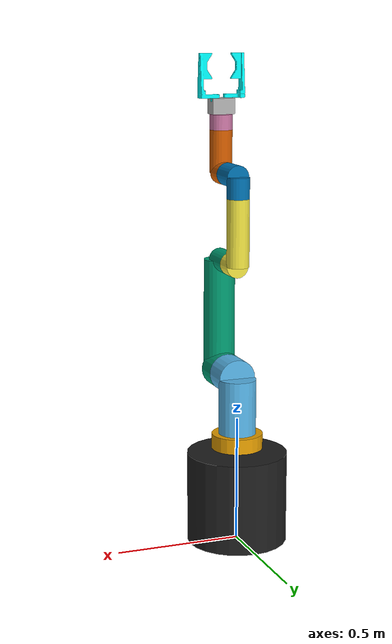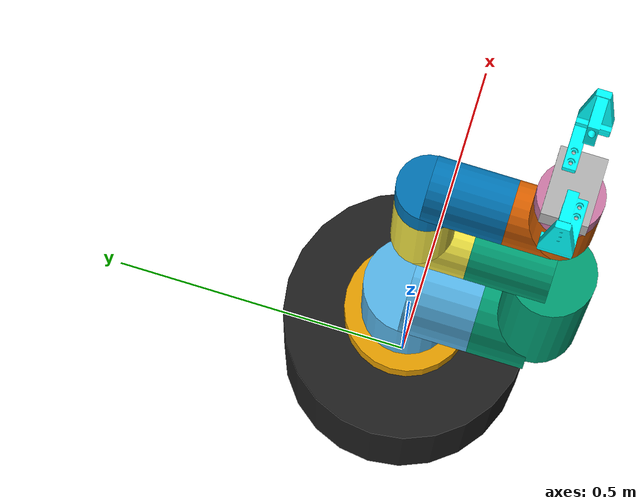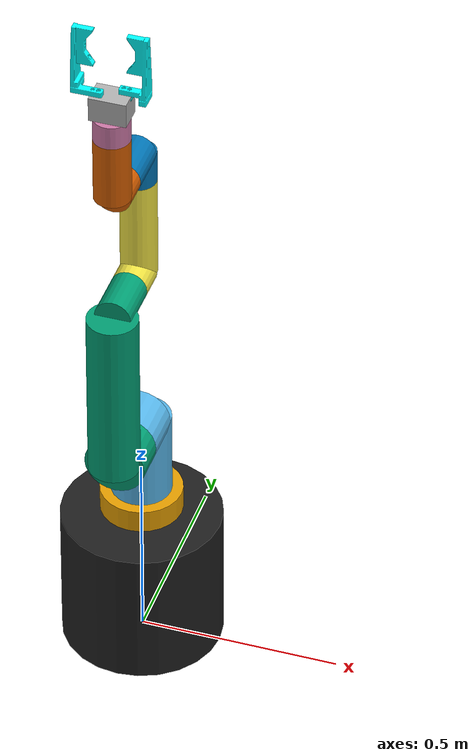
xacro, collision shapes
<?xml version="1.0" ?>
<robot name="mrm" xmlns:xacro="http://www.ros.org/wiki/xacro">

<!-- robot urdf file -->
<xacro:include filename="$(find mrm_description)/urdf/model.xacro"/>

<!-- gripper urdf file -->
<xacro:include filename="$(find mrm_description)/urdf/gripper.xacro"/>

<!-- robot stand urdf file -->
<xacro:include filename="$(find mrm_description)/urdf/stand.xacro"/>

<!-- fixed joint between robot and stand -->
    <joint name="mrm_stand" type="fixed">
      <origin rpy="0 0 0" xyz="0 0 0.23" />
      <parent link="stand" />
      <child link="base_link" />
    </joint>

<!-- fixed joint between robot and gripper -->
    <joint name="link6_gripper" type="fixed">
      <origin rpy="0 0 0" xyz="0 0 0.235" />
      <parent link="link6" />
      <child link="gripper_base" />
    </joint>

<!-- transmission and gazebo -->
    <transmission name="tran1">
        <type>transmission_interface/SimpleTransmission</type>
        <joint name="base_link__link_01">
            <hardwareInterface>PositionJointInterface</hardwareInterface>
        </joint>
        <actuator name="motor1">
            <hardwareInterface>PositionJointInterface</hardwareInterface>
            <mechanicalReduction>1</mechanicalReduction>
        </actuator>
    </transmission>

    <transmission name="tran2">
        <type>transmission_interface/SimpleTransmission</type>
        <joint name="link1_link2">
            <hardwareInterface>PositionJointInterface</hardwareInterface>
        </joint>
        <actuator name="motor2">
            <hardwareInterface>PositionJointInterface</hardwareInterface>
            <mechanicalReduction>1</mechanicalReduction>
        </actuator>
    </transmission>

    <transmission name="tran3">
        <type>transmission_interface/SimpleTransmission</type>
        <joint name="link2_link3">
            <hardwareInterface>PositionJointInterface</hardwareInterface>
        </joint>
        <actuator name="motor3">
            <hardwareInterface>PositionJointInterface</hardwareInterface>
            <mechanicalReduction>1</mechanicalReduction>
        </actuator>
    </transmission>

    <transmission name="tran4">
        <type>transmission_interface/SimpleTransmission</type>
        <joint name="link3_link4">
            <hardwareInterface>PositionJointInterface</hardwareInterface>
        </joint>
        <actuator name="motor4">
            <hardwareInterface>PositionJointInterface</hardwareInterface>
            <mechanicalReduction>1</mechanicalReduction>
        </actuator>
    </transmission>

    <transmission name="tran5">
        <type>transmission_interface/SimpleTransmission</type>
        <joint name="link4_link5">
            <hardwareInterface>PositionJointInterface</hardwareInterface>
        </joint>
        <actuator name="motor5">
            <hardwareInterface>PositionJointInterface</hardwareInterface>
            <mechanicalReduction>1</mechanicalReduction>
        </actuator>
    </transmission>

    <transmission name="tran6">
        <type>transmission_interface/SimpleTransmission</type>
        <joint name="link5_link6">
            <hardwareInterface>PositionJointInterface</hardwareInterface>
        </joint>
        <actuator name="motor6">
            <hardwareInterface>PositionJointInterface</hardwareInterface>
            <mechanicalReduction>1</mechanicalReduction>
        </actuator>
    </transmission>

    <transmission name="tran7_1">
        <type>transmission_interface/SimpleTransmission</type>
        <joint name="gripper_left">
            <hardwareInterface>PositionJointInterface</hardwareInterface>
        </joint>
        <actuator name="motor7">
            <hardwareInterface>PositionJointInterface</hardwareInterface>
            <mechanicalReduction>1</mechanicalReduction>
        </actuator>
    </transmission>

    <transmission name="tran7_2">
        <type>transmission_interface/SimpleTransmission</type>
        <joint name="gripper_right">
            <hardwareInterface>PositionJointInterface</hardwareInterface>
        </joint>
        <actuator name="motor8">
            <hardwareInterface>PositionJointInterface</hardwareInterface>
            <mechanicalReduction>1</mechanicalReduction>
        </actuator>
    </transmission>

    <gazebo>
        <plugin name="gazebo_ros_control" filename="libgazebo_ros_control.so">
        </plugin>
    </gazebo>

    <gazebo>
        <plugin name="joint_state_publisher"
                filename="libgazebo_ros_joint_state_publisher.so">
            <jointName>base_link__link_01, link1_link2, link2_link3, link3_link4, link4_link5, link5_link6, gripper_left, gripper_right</jointName>
        </plugin>
    </gazebo>

    <gazebo>
        <plugin name="gazebo_grasp_fix" filename="libgazebo_grasp_fix.so">
            <arm>
                <arm_name>arm</arm_name>
                <gripper_link>left_finger</gripper_link>
                <gripper_link>right_finger</gripper_link>
                <palm_link>left_finger</palm_link>
            </arm>
            <forces_angle_tolerance>100</forces_angle_tolerance>
            <update_rate>3</update_rate>
            <grip_count_threshold>2</grip_count_threshold>
            <max_grip_count>8</max_grip_count>
            <release_tolerance>0.01</release_tolerance>
            <disable_collision_on_attach>true</disable_collision_on_attach>
            <contact_topic>__default_topic__</contact_topic>
        </plugin>
    </gazebo>
<!--palm link should be a group in end-effector-->

<!--
NEED COLLISION AND INERTIAL PROGAMMING.***
MOVE BASE UP
CHANGE COLOR
-->
</robot>

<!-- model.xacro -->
<robot xmlns:xacro="http://www.ros.org/wiki/xacro">

	<xacro:property name="PI" value="3.1415926535897931"/>

<!-- ROBOT LINKS -->
    <link name="base_link">
		<visual>
			<origin xyz="0 0 0" rpy="0 0 0"/>
			<geometry>
				<mesh filename="package://indy7_description/meshes/stl/Indy7_0.stl"/>
			</geometry>
		</visual>
		<collision>
			<origin xyz="0 0 0" rpy="0 0 0"/>
			<geometry>
				<cylinder length="0.06" radius="0.102"/>
			</geometry>
		</collision>

    <inertial>
        <mass value="1.59306955"/>
        <origin xyz="0 0 0" rpy="0 0 0"/>
        <inertia ixx="0.00572623" ixy="0.00000251" ixz="-0.00011380" iyy="0.00558959" iyz="-0.00000014" izz="0.00966674" />
    </inertial>
    </link>

    <link name="link1">
		<visual>
			<origin xyz="0 0 0" rpy="0 0 0"/>
			<geometry>
				<mesh filename="package://indy7_description/meshes/stl/Indy7_1.stl"/>
			</geometry>
		</visual>
		<collision>
			<origin xyz="0 0 0.111" rpy="0 0 0"/>
			<geometry>
				<cylinder length="0.222" radius="0.075"/>
			</geometry>
		</collision>
		<collision>
			<origin xyz="0 -0.0545 0.222" rpy="${PI/2} 0 0"/>
			<geometry>
				<cylinder length="0.109" radius="0.075"/>
			</geometry>
		</collision>
    <inertial>
        <mass value="1.59306955"/>
        <origin xyz="0 0 0" rpy="0 0 0"/>
        <inertia ixx="0.15418559" ixy="-0.00000235" ixz="0.00001739" iyy="0.12937017" iyz="-0.04854267" izz="0.05964415" />
    </inertial>
    </link>

    <link name="link2">
		<visual>
			<origin xyz="0 0 0" rpy="0 0 0"/>
			<geometry>
				<mesh filename="package://indy7_description/meshes/stl/Indy7_2.stl"/>
			</geometry>
		</visual>
		<collision>
			<origin xyz="-0.225 0 0.09" rpy="${PI/2} 0 -${PI/2}"/>
			<geometry>
				<cylinder length="0.450" radius="0.063"/>
			</geometry>
		</collision>
		<collision>
			<origin xyz="0 0 0.045" rpy="0 0 0"/>
			<geometry>
				<cylinder length="0.09" radius="0.075"/>
			</geometry>
		</collision>
		<collision>
			<origin xyz="-0.45 0 0.02975 " rpy="0 0 0"/>
			<geometry>
				<cylinder length="0.1205" radius="0.045"/>
			</geometry>
		</collision>
    <inertial>
        <mass value="0.18"/>
        <origin xyz="0 0 0" rpy="0 0 0"/>
        <inertia ixx="0.29356980" ixy="-0.00000040" ixz="0.00001441" iyy="0.25088420" iyz="0.03727972" izz="0.03620519" />
    </inertial>
    </link>

    <link name="link3">
		<visual>
			<origin xyz="0 0 0" rpy="0 0 0"/>
			<geometry>
				<mesh filename="package://indy7_description/meshes/stl/Indy7_3.stl"/>
			</geometry>
		</visual>
		<collision>
			<origin xyz="-0.1335 0 -0.075" rpy="${PI/2} 0 -${PI/2}"/>
			<geometry>
				<cylinder length="0.267" radius="0.045"/>
			</geometry>
		</collision>
		<collision>
			<origin xyz="0 0 -0.0375" rpy="0 0 0"/>
			<geometry>
				<cylinder length="0.075" radius="0.045"/>
			</geometry>
		</collision>
    <inertial>
        <mass value="0.18"/>
        <origin xyz="0 0 0.11" rpy="0 0 0"/>
        <inertia ixx="0.03424593" ixy="0.00000149" ixz="0.00000724" iyy="0.03406024" iyz="0.00186009" izz="0.00450477" />
    </inertial>
    </link>

    <link name="link4">
		<visual>
			<origin xyz="0 0 0" rpy="0 0 0"/>
			<geometry>
				<mesh filename="package://indy7_description/meshes/stl/Indy7_4.stl"/>
			</geometry>
		</visual>
		<collision>
			<origin xyz="0 -0.057 0.083" rpy="${PI/2} 0 0"/>
			<geometry>
				<cylinder length="0.114" radius="0.045"/>
			</geometry>
		</collision>
		<collision>
			<origin xyz="0 -0.057 0.083" rpy="${PI/2} 0 0"/>
			<geometry>
				<cylinder length="0.114" radius="0.045"/>
			</geometry>
		</collision>
		<collision>
			<origin xyz="0 0 0.0415" rpy="0 0 0"/>
			<geometry>
				<cylinder length="0.083" radius="0.045"/>
			</geometry>
		</collision>
    <inertial>
        <mass value="0.18"/>
        <origin xyz="0 0 0" rpy="0 0 0"/>
        <inertia ixx="0.00670405" ixy="0.00000375" ixz="0.00000150" iyy="0.00670405" iyz="-0.00127967" izz="0.00617624" />
    </inertial>
    </link>

    <link name="link5">
		<visual>
			<origin xyz="0 0 0" rpy="0 0 0"/>
			<geometry>
				<mesh filename="package://indy7_description/meshes/stl/Indy7_5.stl"/>
			</geometry>
		</visual>
		<collision>
			<origin xyz="-0.084 0 0.069" rpy="${PI/2} 0 -${PI/2}"/>
			<geometry>
				<cylinder length="0.168" radius="0.045"/>
			</geometry>
		</collision>
		<collision>
			<origin xyz="-0 0 0.0345" rpy="0 0 0"/>
			<geometry>
				<cylinder length="0.069" radius="0.045"/>
			</geometry>
		</collision>
    <inertial>
        <mass value="0.18"/>
        <origin xyz="-0.1875 0 0.062" rpy="0 0 0"/>
        <inertia ixx="0.00994891" ixy="0.00000014" ixz="0.00000321" iyy="0.00978189" iyz="-0.00093546" izz="0.00271492" />
    </inertial>
    </link>

    <link name="link6">
		<visual>
			<origin xyz="0 0 0" rpy="0 0 0"/>
			<geometry>
				<mesh filename="package://indy7_description/meshes/stl/Indy7_6.stl"/>
			</geometry>
		</visual>
		<collision>
			<origin xyz="0 0 0.03" rpy="0 0 0"/>
			<geometry>
				<cylinder length="0.06" radius="0.045"/>
			</geometry>
		</collision>
    <inertial>
        <mass value="0.18"/>
        <origin xyz="0 0 0.0125" rpy="0 0 0"/>
        <inertia ixx="0.00043534" ixy="0.00000013" ixz="-0.00000002" iyy="0.00044549" iyz="0.00000051" izz="0.00059634" />
    </inertial>
    </link>

<!-- ROBOT JOINTS -->

    <joint name="base_link__link_01" type="revolute">
    	<parent link="base_link"/>
		<child link="link1"/>
		<origin xyz="0 0 0.03000000" rpy="0 0 0"/>
		<axis xyz="0 0 1"/>
        <limit effort="1000.0" lower="-2" upper="2" velocity="0.5" />
    </joint>

    <joint name="link1_link2" type="revolute">
      	<parent link="link1"/>
		<child link="link2"/>
		<origin xyz="0 -0.10900000 0.22200000" rpy="${PI/2} ${PI/2} 0"/>
	    <axis xyz="0 0 1"/>
        <limit effort="1000.0" lower="-2" upper="2" velocity="0.5" />
    </joint>

    <joint name="link2_link3" type="revolute">
   		<parent link="link2"/>
		<child link="link3"/>
		<origin xyz="-0.45000000 +0.00000000 -0.03050000" rpy="0 0 0"/>
		<axis xyz="0 0 1"/>
      <limit effort="1000.0" lower="-3" upper="3" velocity="0.5" />
    </joint>

    <joint name="link3_link4" type="revolute">
    	<parent link="link3"/>
		<child link="link4"/>
		<origin xyz="-0.26700000 +0.00000000 -0.07500000" rpy="-${PI/2} 0 ${PI/2}"/>
		<axis xyz="0 0 1"/>
      <limit effort="1000.0" lower="-3" upper="3" velocity="0.5" />
    </joint>

<!--
need offset on x and y axis (link 3 and 4 are not exactly on point)
-->
    <joint name="link4_link5" type="revolute">
		<parent link="link4"/>
		<child link="link5"/>
		<origin xyz="+0.00000000 -0.11400000 +0.08300000" rpy="${PI/2} ${PI/2} 0"/>
		<axis xyz="0 0 1"/>
        <limit effort="1000.0" lower="-3" upper="3" velocity="0.5" />
    </joint>

    <joint name="link5_link6" type="revolute">
    	<parent link="link5"/>
		<child link="link6"/>
		<origin xyz="-0.16800000 +0.00000000 +0.06900000" rpy="-${PI/2} 0 ${PI/2}"/>
		<axis xyz="0 0 1"/>
        <limit effort="1000.0" lower="-3.2" upper="3.2" velocity="0.5" />
    </joint>

</robot>

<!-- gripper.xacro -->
<robot xmlns:xacro="http://www.ros.org/wiki/xacro">

<!-- gripper fingers -->
    <link name="gripper_base">
    <visual>
        <origin rpy="1.5708 0 0" xyz="-0.0451 0.031 -0.17376"/>
        <geometry>
            <mesh filename="package://mrm_description/meshes/gripper_base.stl" scale=".001 .001 .001"/>
        </geometry>
    </visual>
    <collision>
        <origin rpy="0 0 0" xyz="0 0 -0.1425"/>
        <geometry>
            <box size="0.091 0.063 0.062"/>
        </geometry>
    </collision>
    <inertial>
        <mass value="0.01"/>
        <origin xyz="0 0 0" rpy="0 0 0"/>
        <inertia ixx="0.0017997696" ixy="0.002937515" ixz="0.00238000234" iyy="0.00296861664" iyz="-0.00330859" izz="0.00283730304" />
    </inertial>
    </link>

    <link name="right_finger">
    <visual>
        <origin rpy="1.5708 0 0" xyz="-0.091 0 0"/>

        <geometry>
            <mesh filename="package://mrm_description/meshes/new_gripper_base.stl" scale=".001 .001 .001"/>
        </geometry>
        <material name="Cyan">
            <color rgba="0 1 1 1"/>
        </material>
    </visual>
    <collision>
        <origin  rpy="1.5708 0 0" xyz="-0.091 0 0"/>
        <geometry>
            <mesh filename="package://mrm_description/meshes/new_gripper_base.stl" scale="0.001 0.001 0.001"/>
        </geometry>
    </collision>
    <inertial>
        <mass value="0.132"/>
        <origin xyz="-0.07461 0.07602 0.04337" rpy="0 0 0"/>
        <inertia ixx="0.449023" ixy="-0.060201" ixz="0.12501" iyy="0.084500" iyz="-0.022897" izz="0.505271" />
    </inertial>
    </link>

    <link name="left_finger">
    <visual>
        <origin rpy="1.5708 0 3.1415926539" xyz="0.0905 0 0"/>
        <geometry>
            <mesh filename="package://mrm_description/meshes/new_gripper_base.stl" scale=".001 .001 .001"/>
        </geometry>
        <material name="Cyan">
            <color rgba="0 1 1 1"/>
        </material>
    </visual>
    <collision>
        <origin rpy="1.5708 0 3.1415926539" xyz="0.0905 0 0"/>
        <geometry>
            <mesh filename="package://mrm_description/meshes/new_gripper_base.stl" scale="0.001 0.001 0.001"/>
        </geometry>
    </collision>
    <inertial>
        <mass value="0.132"/>
        <origin xyz="-0.07461 0.07602 0.04337" rpy="0 0 0"/>
        <inertia ixx="0.449023" ixy="-0.060201" ixz="0.12501" iyy="0.084500" iyz="-0.022897" izz="0.505271" />
    </inertial>
    </link>

<!-- gripper joints -->
    <joint name="gripper_right" type="prismatic">
      <axis xyz="1 0 0" />
      <limit effort="1000.0" lower="-0.02" upper="0.0134" velocity="0.5" />
      <origin rpy="0 0 0" xyz="0 0.0415 -0.12371" />
      <parent link="gripper_base" />
      <child link="right_finger" />
    </joint>

    <joint name="gripper_left" type="prismatic">
      <axis xyz="1 0 0" />
      <limit effort="1000.0" lower="-0.0134" upper="0.02" velocity="0.5" />
      <origin rpy="0 0 0" xyz="0 -0.0415 -0.12371" />
      <parent link="gripper_base" />
      <child link="left_finger" />
    </joint>
</robot>

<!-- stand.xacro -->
<robot name="mrm" xmlns:xacro="http://www.ros.org/wiki/xacro">

   <link name="world"/>

   <link name="stand">
      <inertial>
         <origin xyz="0 0 0"/>
         <mass value="1.0"/>
         <inertia ixx="1.0" ixy="0.0" ixz="0.0" iyy="100.0" iyz="0.0" izz="1.0"/>
      </inertial>

      <visual>
         <origin xyz="0 0 0"/>
         <geometry>
            <cylinder length="0.365" radius="0.2"/>
         </geometry>
      </visual>

      <collision>
         <origin xyz="0 0 0"/>
         <geometry>
            <cylinder length="0.365" radius="0.2"/>
         </geometry>
      </collision>
   </link>

    <joint name="fix" type="fixed">
        <parent link="world"/>
        <child link="stand"/>
        <origin xyz="0 0 0.1825" rpy="0 0 0"/>
    </joint>

   <gazebo reference="stand">
      <material>Gazebo/FlatBlack</material>
   </gazebo>

</robot>
